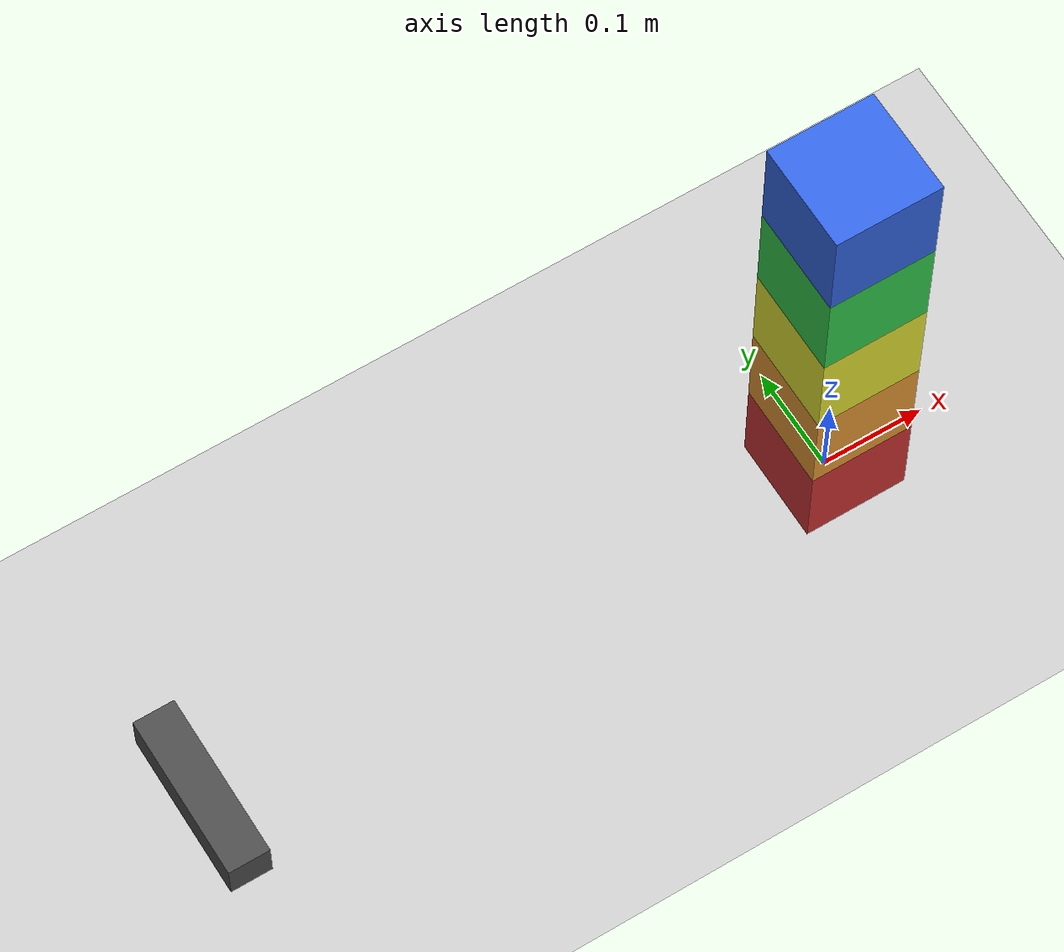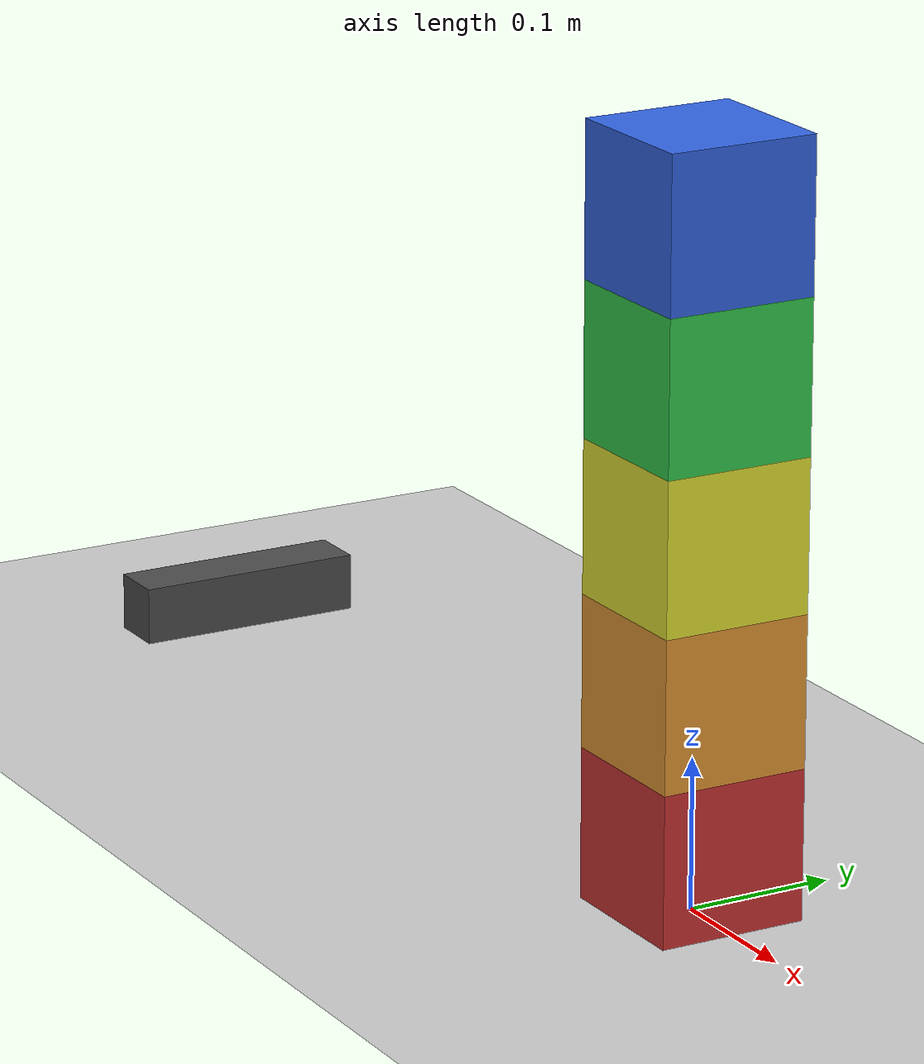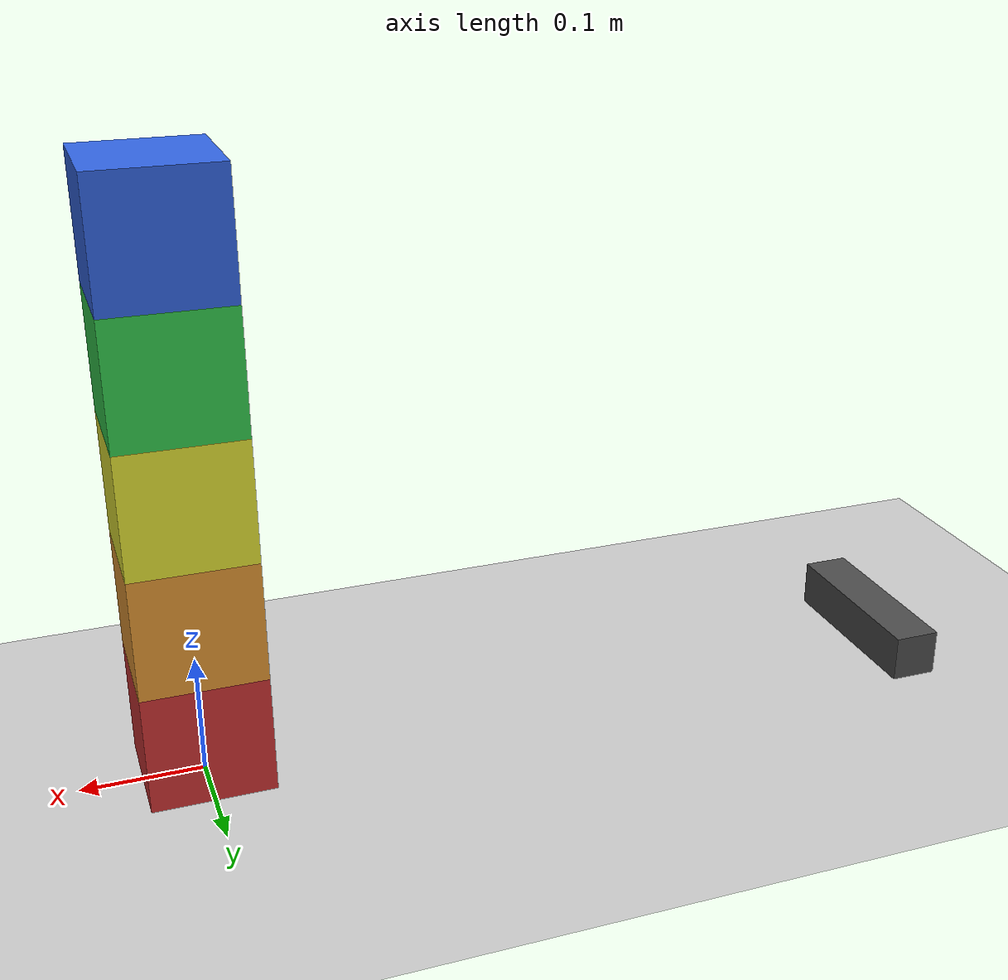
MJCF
<mujoco model="five_block_topple">
  <option timestep="0.002" gravity="0 0 -9.81"/>

  <worldbody>
    <light name="sun" pos="0 0 3" dir="0 0 -1" directional="true"/>
    <geom name="floor" type="plane" size="3 3 0.1" friction="0.3 0.005 0.0001" rgba="0.8 0.8 0.8 1"/>

    <body name="block1" pos="0 0 0.05">
      <freejoint name="block1_free"/>
      <geom name="block1_geom" type="box" size="0.05 0.05 0.05" mass="0.5" friction="0.3 0.005 0.0001" rgba="0.8 0.2 0.2 1"/>
    </body>
    <body name="block2" pos="0 0 0.15">
      <freejoint name="block2_free"/>
      <geom name="block2_geom" type="box" size="0.05 0.05 0.05" mass="0.5" friction="0.3 0.005 0.0001" rgba="0.9 0.6 0.2 1"/>
    </body>
    <body name="block3" pos="0 0 0.25">
      <freejoint name="block3_free"/>
      <geom name="block3_geom" type="box" size="0.05 0.05 0.05" mass="0.5" friction="0.3 0.005 0.0001" rgba="0.9 0.9 0.2 1"/>
    </body>
    <body name="block4" pos="0 0 0.35">
      <freejoint name="block4_free"/>
      <geom name="block4_geom" type="box" size="0.05 0.05 0.05" mass="0.5" friction="0.3 0.005 0.0001" rgba="0.2 0.8 0.3 1"/>
    </body>
    <body name="block5" pos="0 0 0.45">
      <freejoint name="block5_free"/>
      <geom name="block5_geom" type="box" size="0.05 0.05 0.05" mass="0.5" friction="0.3 0.005 0.0001" rgba="0.2 0.4 0.9 1"/>
    </body>

    <body name="ram" pos="-0.62 0 0.025">
      <joint name="ram_slide" type="slide" axis="1 0 0" limited="true" range="0 0.62" damping="0"/>
      <geom name="ram_head" type="box" size="0.02 0.08 0.02" mass="3" friction="0.3 0.005 0.0001" rgba="0.3 0.3 0.3 1"/>
    </body>
  </worldbody>

  <keyframe>
    <key name="start" qpos="0 0 0.05 1 0 0 0  0 0 0.15 1 0 0 0  0 0 0.25 1 0 0 0  0 0 0.35 1 0 0 0  0 0 0.45 1 0 0 0  0" qvel="0 0 0 0 0 0  0 0 0 0 0 0  0 0 0 0 0 0  0 0 0 0 0 0  0 0 0 0 0 0  1.2"/>
  </keyframe>
</mujoco>
